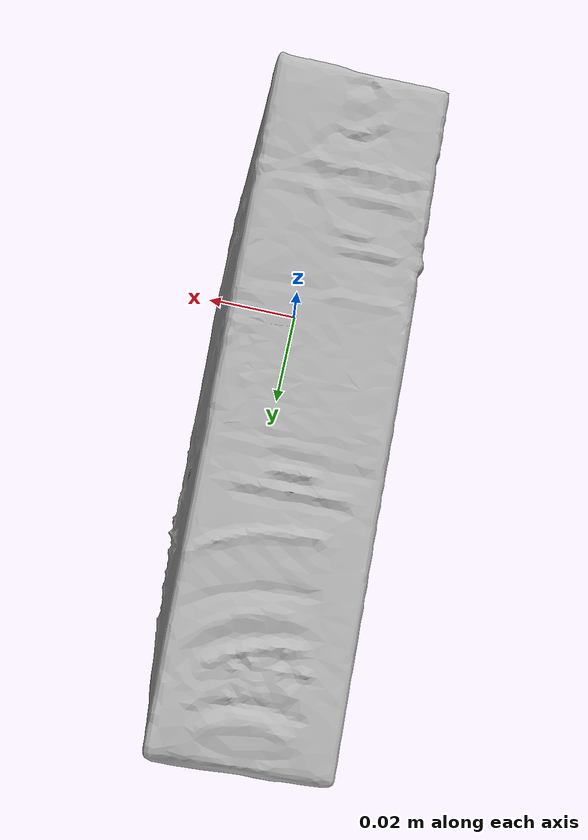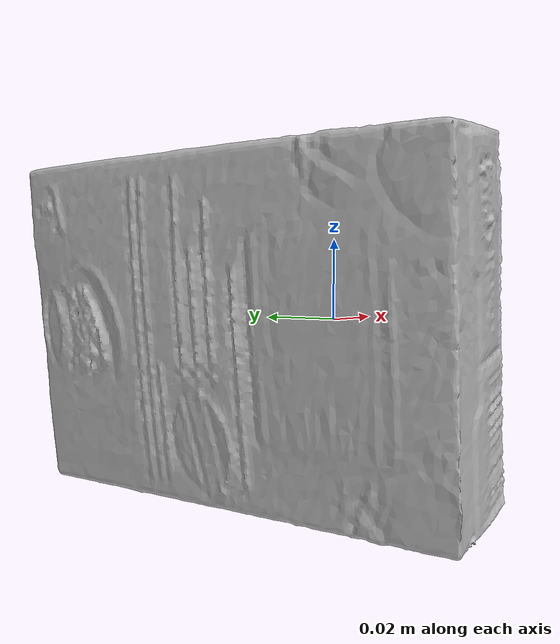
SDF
<?xml version='1.0'?>
<sdf version="1.4">
  <model name="HotPot">
    <static>false</static>
    <link name="link">
      <inertial>
        <pose>-0.001006646922158121 0.027005017023187517 -0.003011688704816528 1.5650910660913597 0.12318807966667504 -3.1099717339475563</pose>
        <mass>0.044198293714344236</mass>
        <inertia>
          <ixx>9.232377015670653e-05</ixx>
          <ixy>6.107555339416902e-22</ixy>
          <ixz>3.055863851166074e-21</ixz>
          <iyy>6.485961028436677e-05</iyy>
          <iyz>-1.7166330479131486e-20</iyz>
          <izz>3.700998244251698e-05</izz>
        </inertia>
      </inertial>
      <collision name="collision">
        <geometry>
          <mesh>
            <!-- Use a downsampled mesh for collisions -->
            <uri>model:///HotPot/HotPot_250_collision.obj</uri>
	        </mesh>
        </geometry>
        <surface>
      </surface>
      </collision>
      <visual name="visual">
        <geometry>
          <mesh>
            <uri>model:///HotPot/HotPot_25k_tex.obj</uri>
	        </mesh>
        </geometry>
        <material>
          <script>
            <uri>model:///HotPot/HotPot.material</uri>
            <name>HotPot</name>
          </script>
        </material>
      </visual>
    </link>
  </model>
</sdf>
